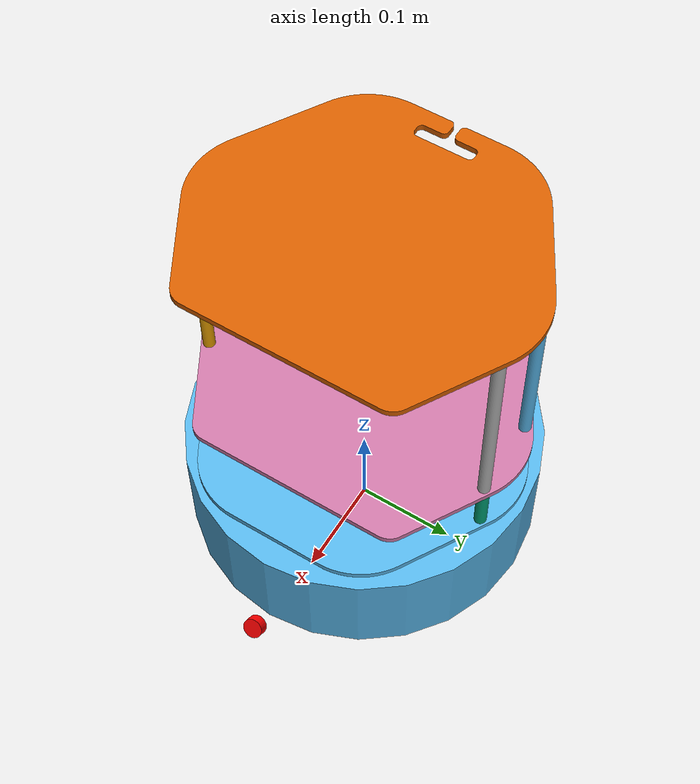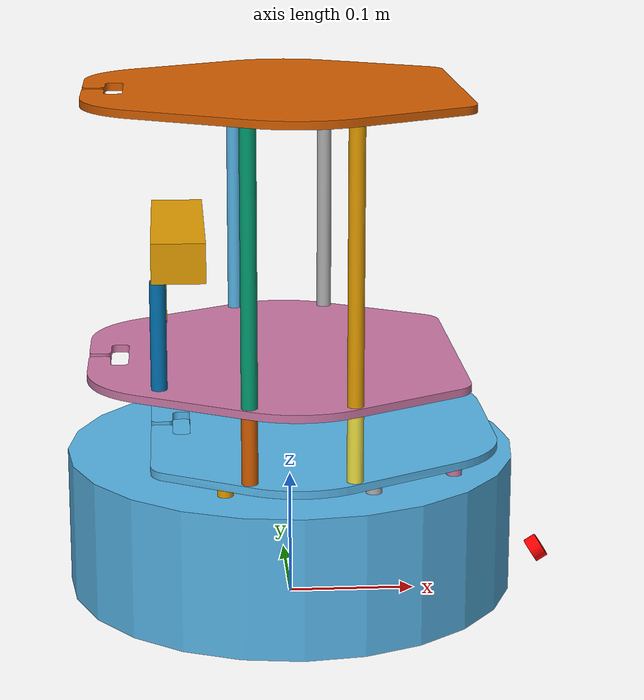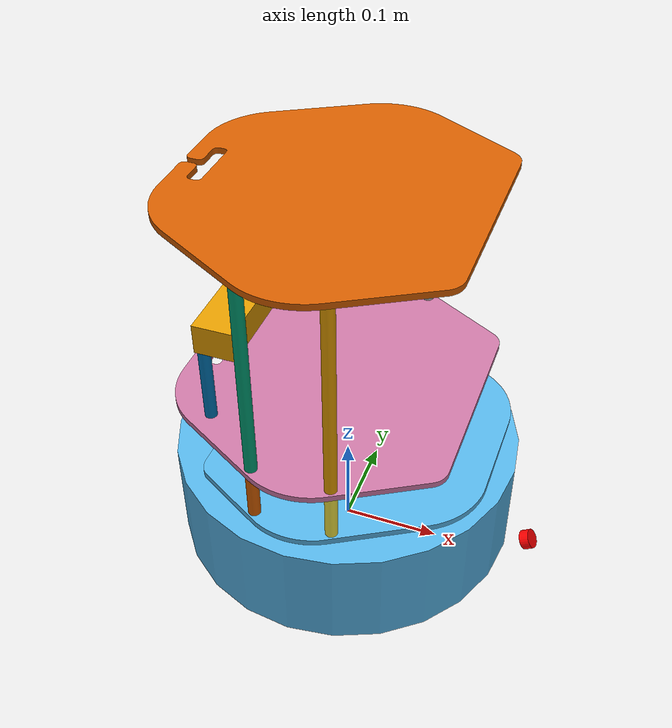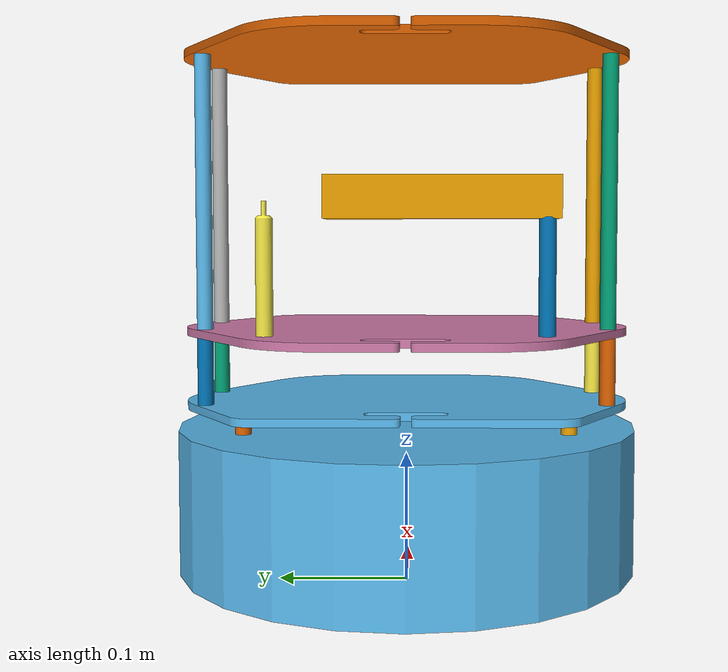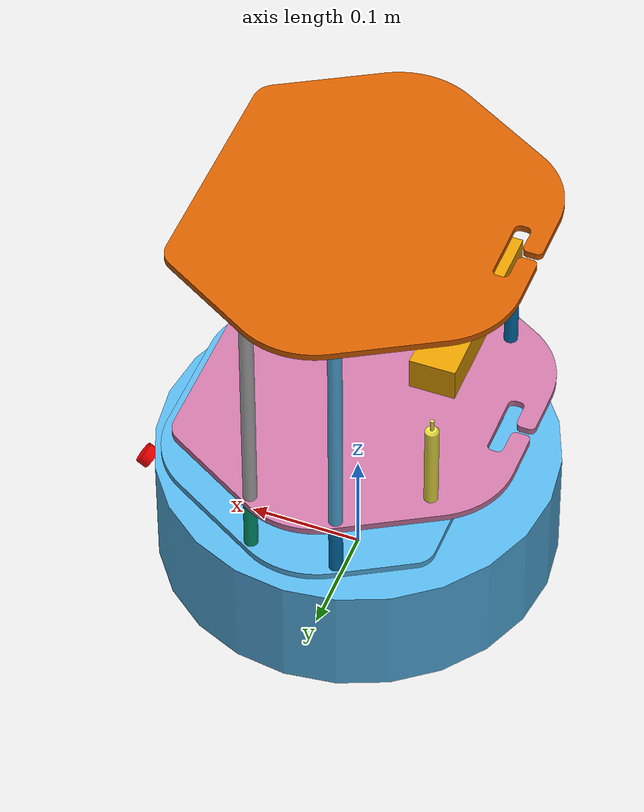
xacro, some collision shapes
<?xml version="1.0"?>
<!--
    - Base      : kobuki
    - Stacks    : hexagons
    - 3d Sensor : astra
-->
<robot name="turtlebot" xmlns:xacro="http://ros.org/wiki/xacro">

  <xacro:include filename="$(find turtlebot_description)/urdf/turtlebot_common_library.urdf.xacro" />
  <xacro:include filename="$(find kobuki_description)/urdf/kobuki.urdf.xacro" />
  <xacro:include filename="$(find turtlebot_description)/urdf/stacks/hexagons.urdf.xacro"/>
  <xacro:include filename="$(find turtlebot_description)/urdf/sensors/astra.urdf.xacro"/>
  <xacro:include filename="$(find turtlebot_description)/urdf/sensors/hokuyo.urdf.xacro"/>
  <xacro:kobuki/>
  <xacro:stack_hexagons parent="base_link"/>
  <xacro:sensor_astra   parent="base_link"/>
</robot>

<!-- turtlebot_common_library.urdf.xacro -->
<!--
  The common turtlebot library of xacros for easy reference
 -->
<robot xmlns:xacro="http://ros.org/wiki/xacro">
  <!-- General -->
  <xacro:include filename="$(find turtlebot_description)/urdf/common_properties.urdf.xacro"/>
  <xacro:include filename="$(find turtlebot_description)/urdf/turtlebot_properties.urdf.xacro"/>
</robot>

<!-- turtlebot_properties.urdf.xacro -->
<robot>
  <!--
    These properties must be observed by any machine
    that wants to be defined as a turtlebot. Refer
    to the REP for more details.

    http://www.ros.org/reps/rep-0119.html
   -->

	<property name="cam_px" value="-0.087" />
	<property name="cam_pz" value="0.2870" />
	<property name="cam_or" value="0" />
	<property name="cam_op" value="0" />
	<property name="cam_oy" value="0" />
</robot>

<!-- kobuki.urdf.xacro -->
<robot name="kobuki" xmlns:xacro="http://ros.org/wiki/xacro">
  <include filename="$(find mbot_gazebo)/urdf/common_properties.urdf.xacro"/>
  <include filename="$(find mbot_gazebo)/urdf/kobuki_gazebo.urdf.xacro"/>

  <!-- Xacro properties -->
  <xacro:property name="M_SCALE" value="0.001"/>

  <!-- Kobuki -->
  <xacro:macro name="kobuki">
    <link name="base_footprint"/>

    <link name="base_link">
      <visual>
        <geometry>
          <!-- new mesh -->
          <mesh filename="package://mbot_gazebo/meshes/main_body.dae" />
        </geometry>
        <origin xyz="0.001 0 0.05199" rpy="0 0 0"/>
      </visual>
      <collision>
        <geometry>
          <cylinder length="0.10938" radius="0.176"/>
        </geometry>
        <origin xyz="0.0 0 0.05949" rpy="0 0 0"/>
      </collision>
      <inertial>
        <mass value="2.4"/> <!-- 2.4/2.6 kg for small/big battery pack -->
        <origin xyz="0 0 0"/>
        <inertia ixx="0.0001" ixy="0.0" ixz="0.0"
                 iyy="0.0001" iyz="0.0"
                 izz="0.0001" />
      </inertial>
    </link>
    <joint name="base_joint" type="fixed">
      <origin xyz="0 0 0.0102" rpy="0 0 0" />
      <parent link="base_footprint"/>
      <child link="base_link" />
    </joint>
    <joint name="wheel_left_joint" type="continuous">
      <parent link="base_link"/>
      <child link="wheel_left_link"/>
      <origin xyz="0.00 ${0.23/2} 0.0250" rpy="${-M_PI/2} 0 0"/>
      <axis xyz="0 0 1"/>
    </joint>

    <link name="wheel_left_link">
      <visual>
        <geometry>
          <mesh filename="package://mbot_gazebo/meshes/wheel.dae"/>
        </geometry>
        <origin xyz="0 0 0" rpy="0 0 0"/>
      </visual>
      <collision>
        <geometry>
          <cylinder length="0.0206" radius="0.0352"/>
        </geometry>
        <origin rpy="0 0 0" xyz="0 0 0"/>
      </collision>
      <inertial>
        <mass value="0.01" />
        <origin xyz="0 0 0" />
        <inertia ixx="0.001" ixy="0.0" ixz="0.0"
                 iyy="0.001" iyz="0.0"
                 izz="0.001" />
      </inertial>
    </link>

    <joint name="wheel_right_joint" type="continuous">
      <parent link="base_link"/>
      <child link="wheel_right_link"/>
      <origin xyz="0.00 -${0.23/2} 0.0250" rpy="${-M_PI/2} 0 0"/>
      <axis xyz="0 0 1"/>
    </joint>
    <link name="wheel_right_link">
      <visual>
        <geometry>
          <mesh filename="package://mbot_gazebo/meshes/wheel.dae"/>
        </geometry>
        <origin xyz="0 0 0" rpy="0 0 0"/>
      </visual>
      <collision>
        <geometry>
          <cylinder length="0.0206" radius="0.0350"/>
        </geometry>
        <origin rpy="0 0 0" xyz="0 0 0"/>
      </collision>
      <inertial>
        <mass value="0.01" />
        <origin xyz="0 0 0" />
        <inertia ixx="0.001" ixy="0.0" ixz="0.0"
                 iyy="0.001" iyz="0.0"
                 izz="0.001" />
      </inertial>
    </link>
    <link name="caster_front_link">
      <collision>
        <geometry>
          <cylinder length="0.0176" radius="0.017"/>
        </geometry>
        <origin rpy="0 0 0" xyz="0 0 0"/>
      </collision>
      <inertial>
        <mass value="0.01" />
        <origin xyz="0 0 0" />
        <inertia ixx="0.001" ixy="0.0" ixz="0.0"
                 iyy="0.001" iyz="0.0"
                 izz="0.001" />
      </inertial>
    </link>

    <joint name="caster_front_joint" type="fixed">
      <parent link="base_link"/>
      <child link="caster_front_link"/>
      <origin xyz="0.115 0.0 0.007" rpy="${-M_PI/2} 0 0"/>
    </joint>

    <joint name="caster_back_joint" type="fixed">
      <parent link="base_link"/>
      <child link="caster_back_link"/>
      <origin xyz="-0.135 0.0 0.009" rpy="${-M_PI/2} 0 0"/>
    </joint>
    <link name="caster_back_link">
      <collision>
        <geometry>
          <cylinder length="0.0176" radius="0.017"/>
        </geometry>
        <origin rpy="0 0 0" xyz="0 0 0"/>
      </collision>
      <inertial>
        <mass value="0.01" />
        <origin xyz="0 0 0" />
        <inertia ixx="0.001" ixy="0.0" ixz="0.0"
                 iyy="0.001" iyz="0.0"
                 izz="0.001" />
      </inertial>
    </link>

    <!-- Kobuki's sensors -->
    <joint name="gyro_joint" type="fixed">
      <axis xyz="0 1 0"/>
      <origin xyz="0.056 0.062 0.0202" rpy="0 0 0"/>
      <parent link="base_link"/>
      <child link="gyro_link"/>
    </joint>
    <link name="gyro_link">
      <inertial>
        <mass value="0.001"/>
        <origin xyz="0 0 0" rpy="0 0 0"/>
        <inertia ixx="0.0001" ixy="0" ixz="0"
                 iyy="0.000001" iyz="0"
                 izz="0.0001"/>
      </inertial>
    </link>

	  <joint name="cliff_sensor_left_joint" type="fixed">
	    <origin xyz="0.08734 0.13601 0.0214" rpy="0 ${M_PI/2} 0" />
	    <parent link="base_link"/>
	    <child link="cliff_sensor_left_link" />
	  </joint>
	  <link name="cliff_sensor_left_link">
      <inertial>
        <mass value="0.0001" />
        <origin xyz="0 0 0" />
        <inertia ixx="0.0001" ixy="0.0" ixz="0.0"
                 iyy="0.0001" iyz="0.0"
                 izz="0.0001" />
      </inertial>
    </link>
	<link name="bumper_link">
    <inertial>
        <origin xyz="0.0 0.0 0.0" rpy="0 1.0 0"/>
        <mass value="0.0000000001"/>
        <inertia ixx="0.00000001" ixy="0.00000001" ixz="0.00000001" iyy="0.00000001" iyz="0.00000001" izz="0.00000001"/>
    </inertial>
    <visual>
        <origin xyz="0.0 0.0 0.0" rpy="0.0 1.0 0"/>
        <geometry>
            <cylinder radius="0.01" length="0.01"/>
        </geometry>
        <material name="red">
            <color rgba="1.0 0.0 0.0 1.0"/>
        </material>
    </visual>
    <collision name="base_collision">
        <origin xyz="0.0 0.0 0.0" rpy="0.0 1.0 0.0"/>
        <geometry>
            <cylinder radius="0.01" length="0.01"/>
        </geometry>
    </collision>
  </link>
  <joint name="bumper_joint" type="fixed">
      <origin xyz="0.2 0.00 0.0214" rpy="0.0 0.0 0.0"/>
      <parent link="base_link"/>
      <child link="bumper_link"/>
  </joint>
	  <joint name="cliff_sensor_right_joint" type="fixed">
	    <origin xyz="0.085 -0.13601 0.0214" rpy="0 ${M_PI/2} 0" />
	    <parent link="base_link"/>
	    <child link="cliff_sensor_right_link" />
	  </joint>
    <link name="cliff_sensor_right_link">
      <inertial>
        <mass value="0.0001" />
        <origin xyz="0 0 0" />
        <inertia ixx="0.0001" ixy="0.0" ixz="0.0"
                 iyy="0.0001" iyz="0.0"
                 izz="0.0001" />
      </inertial>
    </link>

    <joint name="cliff_sensor_front_joint" type="fixed">
      <origin xyz="0.156 0.00 0.0214" rpy="0 ${M_PI/2} 0" />
      <parent link="base_link"/>
      <child link="cliff_sensor_front_link" />
    </joint>
    <link name="cliff_sensor_front_link">
      <inertial>
        <mass value="0.0001" />
        <origin xyz="0 0 0" />
        <inertia ixx="0.0001" ixy="0.0" ixz="0.0"
                 iyy="0.0001" iyz="0.0"
                 izz="0.0001" />
      </inertial>
    </link>
    <!--  Gazebo additions -->

    <kobuki_sim/>
    <kobuki_bumpers/>
    <kobuki_cliff_sensors/>
    <kobuki_sim_imu/>
  </xacro:macro>

</robot>

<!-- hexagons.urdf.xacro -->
<!--
  Hexagon stacks
 -->
<robot name="stack_hexagons" xmlns:xacro="http://ros.org/wiki/xacro">
  <xacro:include filename="$(find mbot_gazebo)/urdf/common_properties.urdf.xacro"/>

  <!-- Xacro properties -->
  <xacro:property name="M_SCALE" value="0.001"/>

  <!-- Xacro macros -->
  <!-- Pole macros -->
  <xacro:macro name="stack_bottom_pole" params="parent number x_loc y_loc z_loc">
    <joint name="pole_bottom_${number}_joint" type="fixed">
      <origin xyz="${x_loc} ${y_loc} ${z_loc}" rpy="0 0 0"/>
      <parent link="${parent}"/>
      <child link="pole_bottom_${number}_link"/>
    </joint>
    <link name="pole_bottom_${number}_link">
      <visual>
        <origin xyz="0 0 0" rpy="0 0 0"/>
        <geometry>
          <mesh filename="package://mbot_gazebo/meshes/stacks/hexagons/pole_bottom.dae"/>
        </geometry>
      </visual>
      <collision>
        <origin xyz="0 0 0" rpy="0 0 0"/>
        <geometry>
          <cylinder length="0.0492" radius="0.006"/>
        </geometry>
      </collision>
      <inertial>
        <mass value="0.008"/>
        <origin xyz="0 0 0" rpy="0 0 0"/>
        <inertia ixx="0.000001686" ixy="0.0" ixz="0.0"
                 iyy="0.000001686" iyz="0.0"
                 izz="0.000000144"/>
      </inertial>
    </link>
  </xacro:macro>

  <xacro:macro name="stack_middle_pole" params="parent number x_loc y_loc z_loc">
    <joint name="pole_middle_${number}_joint" type="fixed">
      <origin xyz="${x_loc} ${y_loc} ${z_loc}" rpy="0 0 0" />
      <parent link="${parent}"/>
      <child link="pole_middle_${number}_link"/>
    </joint>
    <link name="pole_middle_${number}_link">
      <visual>
        <origin xyz="0 0 0" rpy="0 ${M_PI} 0"/>
        <geometry>
          <mesh filename="package://mbot_gazebo/meshes/stacks/hexagons/pole_middle.dae"/>
        </geometry>
      </visual>
      <collision>
        <origin xyz="0 0 0" rpy="0 0 0"/>
        <geometry>
          <cylinder length="0.0608" radius="0.006"/>
        </geometry>
      </collision>
      <inertial>
        <mass value="0.012"/>
        <origin xyz="0 0 0"/>
        <inertia ixx="0.000003805" ixy="0.0" ixz="0.0"
                 iyy="0.000003805" iyz="0.0"
                 izz="0.000000216"/>
      </inertial>
    </link>
  </xacro:macro>

  <xacro:macro name="stack_top_pole" params="parent number x_loc y_loc z_loc">
    <joint name="pole_top_${number}_joint" type="fixed">
      <origin xyz="${x_loc} ${y_loc} ${z_loc}" rpy="0 0 0"/>
      <parent link="${parent}"/>
      <child link="pole_top_${number}_link"/>
    </joint>
    <link name="pole_top_${number}_link">
      <visual>
        <origin xyz=" 0 0 0" rpy="0 0 0"/>
        <geometry>
          <mesh filename="package://mbot_gazebo/meshes/stacks/hexagons/pole_top.dae"/>
        </geometry>
      </visual>
      <collision>
        <origin xyz="0 0 0" rpy="0 0 0"/>
        <geometry>
          <cylinder length="0.2032" radius="0.006"/>
        </geometry>
      </collision>
      <inertial>
        <mass value="0.060"/>
        <origin xyz="0 0 0"/>
        <inertia ixx="0.000206991" ixy="0.0" ixz="0.0"
                 iyy="0.000206991" iyz="0.0"
                 izz="0.000001080"/>
      </inertial>
    </link>
  </xacro:macro>

  <xacro:macro name="stack_3d_sensor_pole" params="parent number x_loc y_loc z_loc">
    <joint name="pole_kinect_${number}_joint" type="fixed">
      <origin xyz="${x_loc} ${y_loc} ${z_loc}" rpy="0 0 0"/>
      <parent link="${parent}"/>
      <child link="pole_kinect_${number}_link"/>
    </joint>
    <link name="pole_kinect_${number}_link">
      <visual>
        <origin xyz="0 0 0" rpy="0 0 0"/>
        <geometry>
          <mesh filename="package://mbot_gazebo/meshes/stacks/hexagons/pole_kinect.dae" />
        </geometry>
      </visual>
      <collision>
        <origin xyz="0 0 0" rpy="0 0 0"/>
        <geometry>
          <cylinder length="0.0936" radius="0.006"/>
        </geometry>
      </collision>
      <inertial>
        <mass value="0.020"/>
        <origin xyz="0 0 0"/>
        <inertia ixx="0.000014782" ixy="0.0" ixz="0.0"
                 iyy="0.000014782" iyz="0.0"
                 izz="0.000000360"/>
      </inertial>
    </link>
  </xacro:macro>

  <xacro:macro name="stack_hexagons" params="parent">
    <xacro:stack_bottom_pole parent="${parent}" number="0" x_loc= "0.120" y_loc= "0.082" z_loc="0.1028"/>
    <xacro:stack_bottom_pole parent="${parent}" number="1" x_loc= "0.055" y_loc= "0.120" z_loc="0.1028"/>
    <xacro:stack_bottom_pole parent="${parent}" number="2" x_loc="-0.055" y_loc= "0.120" z_loc="0.1028"/>
    <xacro:stack_bottom_pole parent="${parent}" number="3" x_loc= "0.120" y_loc="-0.082" z_loc="0.1028"/>
    <xacro:stack_bottom_pole parent="${parent}" number="4" x_loc= "0.055" y_loc="-0.120" z_loc="0.1028"/>
    <xacro:stack_bottom_pole parent="${parent}" number="5" x_loc="-0.055" y_loc="-0.120" z_loc="0.1028"/>

    <joint name="plate_bottom_joint" type="fixed">
      <origin xyz="0.02364 0.0 0.1306" rpy="0 0 0"/>
      <parent link="${parent}"/>
      <child link="plate_bottom_link"/>
    </joint>
    <link name="plate_bottom_link">
      <visual>
        <origin xyz="0 0 0" rpy="0 0 0"/>
        <geometry>
          <mesh filename="package://mbot_gazebo/meshes/stacks/hexagons/plate_bottom.dae"/>
        </geometry>
      </visual>
      <collision>
        <origin xyz="-0.02364 0 0" rpy="0 0 0"/>
        <geometry>
          <cylinder length="0.006" radius="0.170"/>
        </geometry>
      </collision>
      <inertial>
        <mass value="0.520" />
        <origin xyz="0 0 0" />
        <inertia ixx="0.003328" ixy="0.0" ixz="0.0"
                 iyy="0.003328" iyz="0.0"
                 izz="0.006656" />
      </inertial>
    </link>

    <xacro:stack_middle_pole parent="${parent}" number="0" x_loc= "0.0381" y_loc= "0.1505" z_loc="0.1640"/>
    <xacro:stack_middle_pole parent="${parent}" number="1" x_loc= "0.0381" y_loc="-0.1505" z_loc="0.1640"/>
    <xacro:stack_middle_pole parent="${parent}" number="2" x_loc="-0.0381" y_loc= "0.1505" z_loc="0.1640"/>
    <xacro:stack_middle_pole parent="${parent}" number="3" x_loc="-0.0381" y_loc="-0.1505" z_loc="0.1640"/>

    <joint name="plate_middle_joint" type="fixed">
      <origin xyz="-0.01364 0.0 0.1874" rpy="0 0 0"/>
      <parent link="${parent}"/>
      <child link="plate_middle_link"/>
    </joint>
    <link name="plate_middle_link">
      <visual>
        <origin xyz="0 0 0" rpy="0 0 0"/>
        <geometry>
          <mesh filename="package://mbot_gazebo/meshes/stacks/hexagons/plate_middle.dae"/>
        </geometry>
      </visual>
      <collision>
        <origin xyz="0.01364 0.0 0.0" rpy="0 0 0"/>
        <geometry>
          <cylinder length="0.006" radius="0.170"/>
        </geometry>
      </collision>
      <inertial>
        <mass value="0.520" />
        <origin xyz="0 0 0" />
        <inertia ixx="0.003328" ixy="0.0" ixz="0.0"
                 iyy="0.003328" iyz="0.0"
                 izz="0.006656" />
      </inertial>
    </link>

    <xacro:stack_top_pole parent="${parent}" number="0" x_loc= "0.0381" y_loc= "0.1505" z_loc="0.2920"/>
    <xacro:stack_top_pole parent="${parent}" number="1" x_loc= "0.0381" y_loc="-0.1505" z_loc="0.2920"/>
    <xacro:stack_top_pole parent="${parent}" number="2" x_loc="-0.0381" y_loc= "0.1505" z_loc="0.2920"/>
    <xacro:stack_top_pole parent="${parent}" number="3" x_loc="-0.0381" y_loc="-0.1505" z_loc="0.2920"/>
    <xacro:stack_3d_sensor_pole parent="${parent}" number="0" x_loc="-0.1024" y_loc= "0.098" z_loc="0.2372"/>
    <xacro:stack_3d_sensor_pole parent="${parent}" number="1" x_loc="-0.1024" y_loc="-0.098" z_loc="0.2372"/>

    <joint name="plate_top_joint" type="fixed">
      <origin xyz="-0.01364 0.0  0.3966" rpy="0 0 0"/>
      <parent link="${parent}"/>
      <child link="plate_top_link"/>
    </joint>
    <link name="plate_top_link">
      <visual>
        <origin xyz="0 0 0" rpy="0 0 0"/>
        <geometry>
          <mesh filename="package://mbot_gazebo/meshes/stacks/hexagons/plate_top.dae"/>
        </geometry>
      </visual>
      <collision>
        <origin xyz="0.01364 0 0" rpy="0 0 0"/>
        <geometry>
          <cylinder length="0.006" radius="0.170"/>
        </geometry>
      </collision>
      <inertial>
        <mass value="0.520"/>
        <origin xyz="0 0 0"/>
        <inertia ixx="0.003328" ixy="0.0" ixz="0.0"
                 iyy="0.003328" iyz="0.0"
                 izz="0.006656" />
      </inertial>
    </link>
  </xacro:macro>
</robot>

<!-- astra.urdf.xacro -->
<robot name="sensor_astra" xmlns:xacro="http://ros.org/wiki/xacro">
  <xacro:include filename="$(find turtlebot_description)/urdf/turtlebot_gazebo.urdf.xacro"/>
  <xacro:include filename="$(find turtlebot_description)/urdf/turtlebot_properties.urdf.xacro"/>

  <!-- Xacro properties -->
  <xacro:property name="astra_cam_py" value="-0.0125"/>
  <xacro:property name="astra_depth_rel_rgb_py" value="0.0250" />
  <xacro:property name="astra_cam_rel_rgb_py"   value="-0.0125" />
  <xacro:property name="astra_dae_display_scale"   value="1" />
  <!-- Parameterised in part by the values in turtlebot_properties.urdf.xacro -->
  <xacro:macro name="sensor_astra" params="parent">
    <joint name="camera_rgb_joint" type="fixed">
      <origin xyz="${cam_px} ${astra_cam_py} ${cam_pz}"
              rpy="0 0 0"/>
      <parent link="${parent}"/>
      <child link="camera_rgb_frame" />
    </joint>
    <link name="camera_rgb_frame"/>

    <joint name="camera_rgb_optical_joint" type="fixed">
      <origin xyz="0 0 0" rpy="${-M_PI/2} 0 ${-M_PI/2}" />
      <parent link="camera_rgb_frame" />
      <child link="camera_rgb_optical_frame" />
    </joint>
    <link name="camera_rgb_optical_frame"/>

    <joint name="camera_joint" type="fixed">
      <origin xyz="0 ${astra_cam_rel_rgb_py} 0"
              rpy="0 0 0"/>
      <parent link="camera_rgb_frame"/>
      <child link="camera_link"/>
    </joint>
    <link name="camera_link">
      <visual>
        <origin xyz="-0.04 0.02 -0.01" rpy="${M_PI/2} 0 ${M_PI/2}"/>
        <geometry>
          <mesh filename="package://turtlebot_description/meshes/sensors/astra.dae" scale="${astra_dae_display_scale} ${astra_dae_display_scale} ${astra_dae_display_scale}"/>
        </geometry>
      </visual>
      <collision>
        <origin xyz="0.0 0.0 0.0" rpy="0 0 0" />
        <geometry>
        <box size="0.0400 0.1650 0.0300"/>
      </geometry>
      </collision>
      <inertial>
        <mass value="0.564" />
        <origin xyz="0 0 0" />
        <inertia ixx="0.003881243" ixy="0.0" ixz="0.0"
                 iyy="0.000498940" iyz="0.0"
                 izz="0.003879257" />
      </inertial>
    </link>

    <joint name="camera_depth_joint" type="fixed">
      <origin xyz="0 ${astra_depth_rel_rgb_py} 0" rpy="0 0 0" />
      <parent link="camera_rgb_frame" />
      <child link="camera_depth_frame" />
    </joint>
    <link name="camera_depth_frame"/>

    <joint name="camera_depth_optical_joint" type="fixed">
      <origin xyz="0 0 0" rpy="${-M_PI/2} 0 ${-M_PI/2}" />
      <parent link="camera_depth_frame" />
      <child link="camera_depth_optical_frame" />
    </joint>
    <link name="camera_depth_optical_frame"/>

    <!-- RGBD sensor for simulation, same as Kinect -->
    <xacro:turtlebot_sim_3dsensor/>

  </xacro:macro>
</robot>

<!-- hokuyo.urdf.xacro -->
<robot name="sensor_hokuyo" xmlns:xacro="http://ros.org/wiki/xacro">
    <xacro:include filename="$(find turtlebot_description)/urdf/turtlebot_gazebo.urdf.xacro" />
    <xacro:include filename="$(find turtlebot_description)/urdf/turtlebot_properties.urdf.xacro" />

    <xacro:property name="laser_px" value="0.1" />
    <xacro:property name="laser_py" value="0" />
    <xacro:property name="laser_pz" value="0.24" />

    <xacro:macro name="box_inertia" params="x y z mass">
        <inertia ixx="${0.0833333 * mass * (y*y + z*z)}" ixy="0.0" ixz="0.0" iyy="${0.0833333 * mass * (x*x + z*z)}" iyz="0.0" izz="${0.0833333 * mass * (x*x + y*y)}" />
    </xacro:macro>
    <material name="orange">
        <color rgba="1.0 0.423529411765 0.0392156862745 1.0" />
    </material>

    <xacro:macro name="sensor_hokuyo" params="parent">
        <joint name="laser_joint" type="fixed">
            <origin xyz="${laser_px} ${laser_py} ${laser_pz}" rpy="0 0 0" />
            <parent link="${parent}" />
            <child link="laser" />
        </joint>
        <link name="laser">
            <inertial>
                <origin xyz="0 0 0" rpy="0 0 0" />
                <mass value="0.2" />
                <xacro:box_inertia x="0.05" y="0.05" z="0.08" mass="0.2" />
            </inertial>
            <visual>
                <origin xyz="0 0 0" rpy="0 0 0" />
                <geometry>
                    <box size="0.05 0.05 0.08" />
                </geometry>
                <material name="orange" />
            </visual>
            <collision>
                <origin xyz="0 0 0" rpy="0 0 0" />
                <geometry>
                    <box size="0.05 0.05 0.08" />
                </geometry>
            </collision>
        </link>

    </xacro:macro>
</robot>
